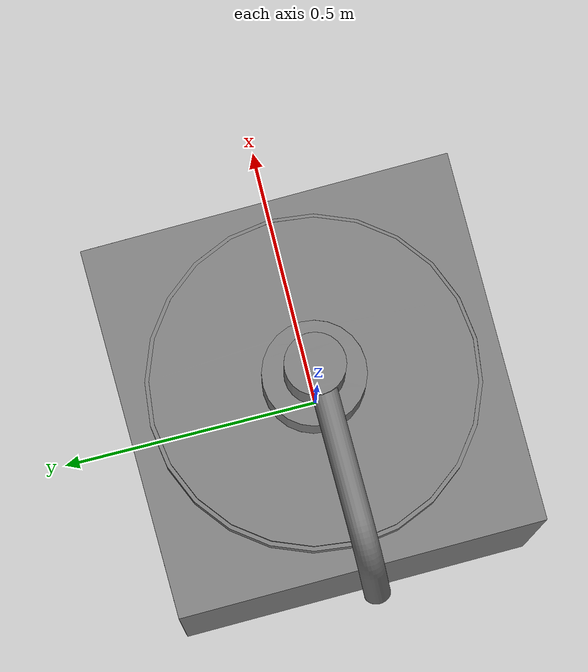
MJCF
<?xml version='1.0' encoding='UTF-8'?>
<mujoco model="partnet_u67595d10-87df-480a-be52-7a390005c95e-0">
  <compiler angle="radian"/>
  <asset>
    <mesh name="original_12" content_type="model/obj" file="textured_objs/original_12.obj"/>
    <mesh name="original_11" content_type="model/obj" file="textured_objs/original_11.obj"/>
    <mesh name="original_9" content_type="model/obj" file="textured_objs/original_9.obj"/>
    <mesh name="original_7" content_type="model/obj" file="textured_objs/original_7.obj"/>
    <mesh name="original_10" content_type="model/obj" file="textured_objs/original_10.obj"/>
    <mesh name="original_5" content_type="model/obj" file="textured_objs/original_5.obj"/>
    <mesh name="original_4" content_type="model/obj" file="textured_objs/original_4.obj"/>
    <mesh name="original_6" content_type="model/obj" file="textured_objs/original_6.obj"/>
    <mesh name="original_3" content_type="model/obj" file="textured_objs/original_3.obj"/>
    <mesh name="original_2" content_type="model/obj" file="textured_objs/original_2.obj"/>
    <mesh name="original_1" content_type="model/obj" file="textured_objs/original_1.obj"/>
  </asset>
  <worldbody>
    <body name="base">
      <body name="link_2" quat="0.5 0.5 -0.5 -0.5">
        <geom type="mesh" mesh="original_3"/>
        <geom type="mesh" mesh="original_2"/>
        <geom type="mesh" mesh="original_1"/>
        <body name="link_1_helper" pos="-0.0057735 0 -0.0052335">
          <inertial pos="0 0 0" mass="1e-06" diaginertia="1e-10 1e-10 1e-10"/>
          <joint name="joint_4" pos="0 0 0" axis="0 1 0" type="slide" range="0 0.02"/>
          <body name="link_1">
            <joint name="joint_1" pos="0 0 0" axis="0 -1 0"/>
            <geom pos="0.0057735 0 0.0052335" quat="1 0 0 0" type="mesh" mesh="original_5"/>
            <geom pos="0.0057735 0 0.0052335" quat="1 0 0 0" type="mesh" mesh="original_4"/>
            <geom pos="0.0057735 0 0.0052335" quat="1 0 0 0" type="mesh" mesh="original_6"/>
            <body name="link_0_helper" pos="5.92749e-07 0 4.22755e-07">
              <inertial pos="0 0 0" mass="1e-06" diaginertia="1e-10 1e-10 1e-10"/>
              <joint name="joint_3" pos="0 0 0" axis="0 -1 0" type="slide" range="0 0.14"/>
              <body name="link_0">
                <joint name="joint_0" pos="0 0 0" axis="0 1 0"/>
                <geom pos="0.00577291 0 0.00523308" quat="1 0 0 0" type="mesh" mesh="original_12"/>
                <geom pos="0.00577291 0 0.00523308" quat="1 0 0 0" type="mesh" mesh="original_11"/>
                <geom pos="0.00577291 0 0.00523308" quat="1 0 0 0" type="mesh" mesh="original_9"/>
                <geom pos="0.00577291 0 0.00523308" quat="1 0 0 0" type="mesh" mesh="original_7"/>
                <geom pos="0.00577291 0 0.00523308" quat="1 0 0 0" type="mesh" mesh="original_10"/>
              </body>
            </body>
          </body>
        </body>
      </body>
    </body>
  </worldbody>
</mujoco>
